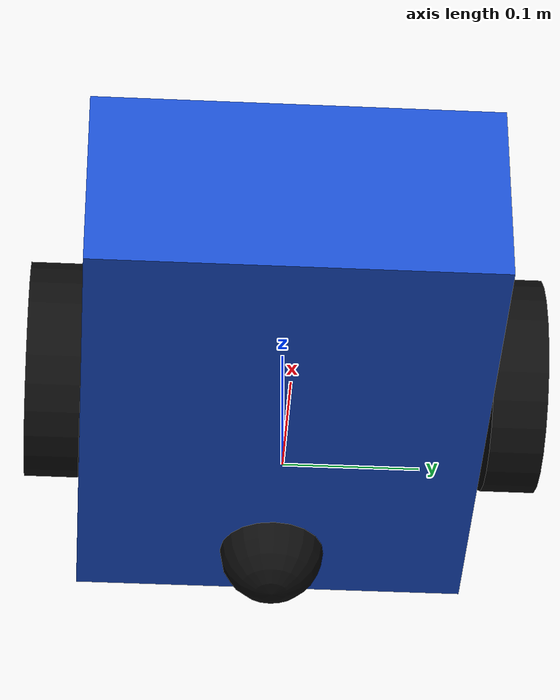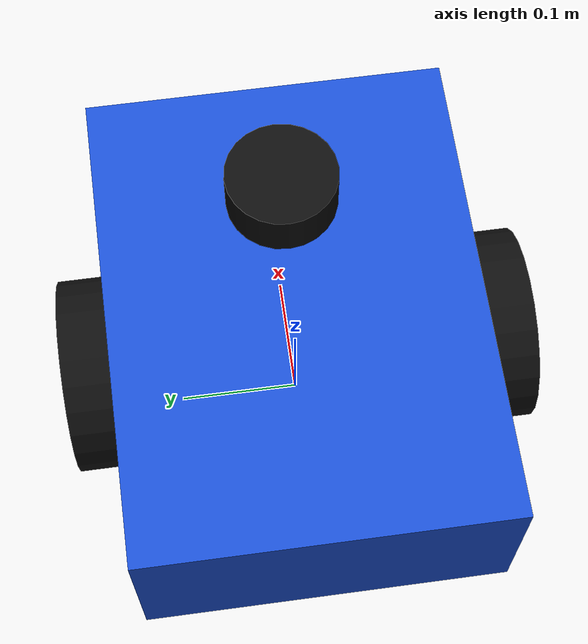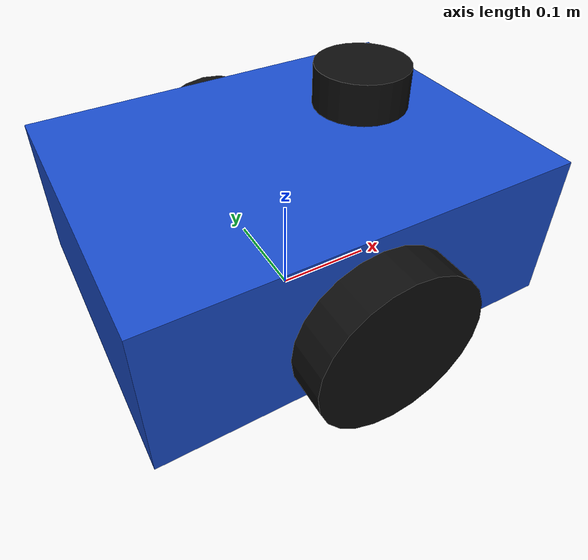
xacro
<?xml version="1.0"?>

<robot xmlns:xacro="http://www.ros.org/wiki/xacro" name="simple_bot">

    <!-- =========================
         COLORS
    ========================== -->

    <material name="blue">
        <color rgba="0.1 0.3 0.8 1.0"/>
    </material>

    <material name="black">
        <color rgba="0.05 0.05 0.05 1.0"/>
    </material>

    <!-- =========================
         BASE FOOTPRINT
    ========================== -->

    <link name="base_footprint"/>

    <joint name="base_footprint_joint" type="fixed">
        <parent link="base_footprint"/>
        <child link="base_link"/>
        <origin xyz="0 0 0.10" rpy="0 0 0"/>
    </joint>

    <!-- =========================
         ROBOT BODY
    ========================== -->

    <link name="base_link">

        <visual>
            <origin xyz="0 0 0"/>
            <geometry>
                <box size="0.40 0.30 0.15"/>
            </geometry>
            <material name="blue"/>
        </visual>

        <collision>
            <origin xyz="0 0 0"/>
            <geometry>
                <box size="0.40 0.30 0.15"/>
            </geometry>
        </collision>

        <inertial>
            <origin xyz="0 0 0"/>
            <mass value="5.0"/>
            <inertia
                ixx="0.0469"
                ixy="0.0"
                ixz="0.0"
                iyy="0.0833"
                iyz="0.0"
                izz="0.1302"/>
        </inertial>

    </link>

    <!-- =========================
         LEFT WHEEL
    ========================== -->

    <link name="left_wheel_link">

        <visual>
            <origin xyz="0 0 0" rpy="1.5708 0 0"/>
            <geometry>
                <cylinder radius="0.08" length="0.04"/>
            </geometry>
            <material name="black"/>
        </visual>

        <collision>
            <origin xyz="0 0 0" rpy="1.5708 0 0"/>
            <geometry>
                <cylinder radius="0.08" length="0.04"/>
            </geometry>
        </collision>

        <inertial>
            <mass value="0.5"/>
            <inertia
                ixx="0.001"
                ixy="0.0"
                ixz="0.0"
                iyy="0.001"
                iyz="0.0"
                izz="0.001"/>
        </inertial>

    </link>

    <joint name="left_wheel_joint" type="continuous">

        <parent link="base_link"/>
        <child link="left_wheel_link"/>

        <origin xyz="0 0.17 -0.02" rpy="0 0 0"/>

        <axis xyz="0 1 0"/>

    </joint>

    <!-- =========================
         RIGHT WHEEL
    ========================== -->

    <link name="right_wheel_link">

        <visual>
            <origin xyz="0 0 0" rpy="1.5708 0 0"/>
            <geometry>
                <cylinder radius="0.08" length="0.04"/>
            </geometry>
            <material name="black"/>
        </visual>

        <collision>
            <origin xyz="0 0 0" rpy="1.5708 0 0"/>
            <geometry>
                <cylinder radius="0.08" length="0.04"/>
            </geometry>
        </collision>

        <inertial>
            <mass value="0.5"/>
            <inertia
                ixx="0.001"
                ixy="0.0"
                ixz="0.0"
                iyy="0.001"
                iyz="0.0"
                izz="0.001"/>
        </inertial>

    </link>

    <joint name="right_wheel_joint" type="continuous">

        <parent link="base_link"/>
        <child link="right_wheel_link"/>

        <origin xyz="0 -0.17 -0.02" rpy="0 0 0"/>

        <axis xyz="0 1 0"/>

    </joint>

    <!-- =========================
         CASTER
    ========================== -->

    <link name="caster_link">

        <visual>
            <geometry>
                <sphere radius="0.04"/>
            </geometry>
            <material name="black"/>
        </visual>

        <collision>
            <geometry>
                <sphere radius="0.04"/>
            </geometry>
        </collision>

        <inertial>
            <mass value="0.1"/>
            <inertia
                ixx="0.0001"
                ixy="0"
                ixz="0"
                iyy="0.0001"
                iyz="0"
                izz="0.0001"/>
        </inertial>

    </link>

    <joint name="caster_joint" type="fixed">

        <parent link="base_link"/>
        <child link="caster_link"/>

        <origin xyz="-0.15 0 -0.075"/>

    </joint>

    <!-- =========================
         LIDAR
    ========================== -->

    <link name="lidar_link">

        <visual>
            <geometry>
                <cylinder radius="0.045" length="0.04"/>
            </geometry>
            <material name="black"/>
        </visual>

    </link>

    <joint name="lidar_joint" type="fixed">

        <parent link="base_link"/>
        <child link="lidar_link"/>

        <origin xyz="0.08 0 0.115"/>

    </joint>

</robot>
